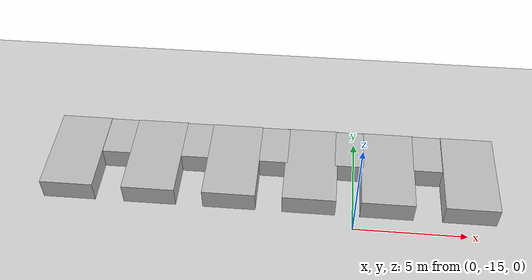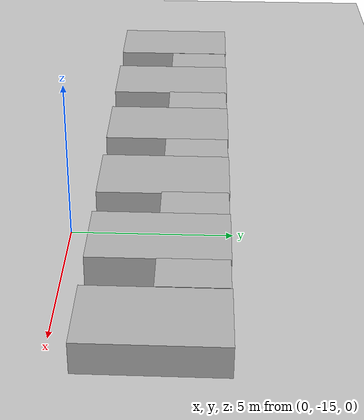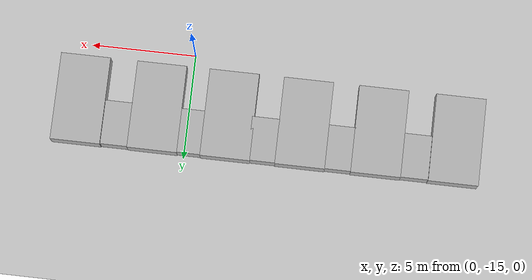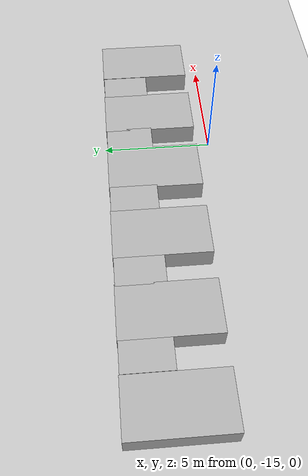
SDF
<sdf version="1.6">
 <world name="default">
  <plugin filename="gz-sim-physics-system" name="gz::sim::systems::Physics"/>
  <plugin filename="gz-sim-user-commands-system" name="gz::sim::systems::UserCommands"/>
  <plugin filename="gz-sim-scene-broadcaster-system" name="gz::sim::systems::SceneBroadcaster"/>
  <plugin filename="gz-sim-sensors-system" name="gz::sim::systems::Sensors">
   <render_engine>ogre2</render_engine>
  </plugin>
  <physics name="1ms" type="ignored">
   <max_step_size>0.005</max_step_size>
   <real_time_factor>1.0</real_time_factor>
  </physics>
  <light type="directional" name="sun">
   <pose>0 0 10 0 0 0</pose>
   <diffuse>0.8 0.8 0.8 1</diffuse>
   <specular>0.2 0.2 0.2 1</specular>
   <attenuation>
    <range>1000</range>
    <constant>0.9</constant>
    <linear>0.01</linear>
    <quadratic>0.001</quadratic>
   </attenuation>
   <direction>-0.5 0.1 -0.9</direction>
  </light>
  <model name="ground_plane">
   <static>true</static>
   <link name="link">
    <collision name="collision">
     <geometry><plane><normal>0 0 1</normal><size>100 100</size></plane></geometry>
    </collision>
    <visual name="visual">
     <geometry><plane><normal>0 0 1</normal><size>100 100</size></plane></geometry>
     <material>
      <ambient>0.8 0.8 0.8 1</ambient>
      <diffuse>0.8 0.8 0.8 1</diffuse>
      <specular>0.8 0.8 0.8 1</specular>
     </material>
    </visual>
   </link>
  </model>
  <model name="systembox_right_0">
   <pose>5.14 -12.2 0.49999933294646554 0 0 0</pose>
   <link name="box_link">
    <collision name="box_collision"><geometry><box><size>2.363 4.171 1</size></box></geometry></collision>
    <visual name="box_visual"><geometry><box><size>2.363 4.171 1</size></box></geometry></visual>
   </link>
   <static>true</static>
  </model>
  <model name="systembox_mid_0">
   <pose>3.29 -11.19 0.49999933294646554 0 0 0</pose>
   <link name="box_link">
    <collision name="box_collision"><geometry><box><size>1.3 2.1 1</size></box></geometry></collision>
    <visual name="box_visual"><geometry><box><size>1.3 2.1 1</size></box></geometry></visual>
   </link>
   <static>true</static>
  </model>
  <model name="systembox_left_0">
   <pose>1.49 -12.2 0.49999933294646554 0 0 0</pose>
   <link name="box_link">
    <collision name="box_collision"><geometry><box><size>2.363 4.171 1</size></box></geometry></collision>
    <visual name="box_visual"><geometry><box><size>2.363 4.171 1</size></box></geometry></visual>
   </link>
   <static>true</static>
  </model>
  <model name="systembox_junction_0">
   <pose>-0.25 -11.19 0.49999933294646554 0 0 0</pose>
   <link name="box_link">
    <collision name="box_collision"><geometry><box><size>1.3 2.1 1</size></box></geometry></collision>
    <visual name="box_visual"><geometry><box><size>1.3 2.1 1</size></box></geometry></visual>
   </link>
   <static>true</static>
  </model>
  <model name="systembox_right_1">
   <pose>-1.97 -12.2 0.49999933294646554 0 0 0</pose>
   <link name="box_link">
    <collision name="box_collision"><geometry><box><size>2.363 4.171 1</size></box></geometry></collision>
    <visual name="box_visual"><geometry><box><size>2.363 4.171 1</size></box></geometry></visual>
   </link>
   <static>true</static>
  </model>
  <model name="systembox_mid_1">
   <pose>-3.7 -11.19 0.49999933294646554 0 0 0</pose>
   <link name="box_link">
    <collision name="box_collision"><geometry><box><size>1.3 2.1 1</size></box></geometry></collision>
    <visual name="box_visual"><geometry><box><size>1.3 2.1 1</size></box></geometry></visual>
   </link>
   <static>true</static>
  </model>
  <model name="systembox_left_1">
   <pose>-5.52 -12.2 0.49999933294646554 0 0 0</pose>
   <link name="box_link">
    <collision name="box_collision"><geometry><box><size>2.363 4.171 1</size></box></geometry></collision>
    <visual name="box_visual"><geometry><box><size>2.363 4.171 1</size></box></geometry></visual>
   </link>
   <static>true</static>
  </model>
  <model name="systembox_junction_1">
   <pose>-7.35 -11.19 0.49999933294646554 0 0 0</pose>
   <link name="box_link">
    <collision name="box_collision"><geometry><box><size>1.3 2.1 1</size></box></geometry></collision>
    <visual name="box_visual"><geometry><box><size>1.3 2.1 1</size></box></geometry></visual>
   </link>
   <static>true</static>
  </model>
  <model name="systembox_right_2">
   <pose>-9.11 -12.2 0.49999933294646554 0 0 0</pose>
   <link name="box_link">
    <collision name="box_collision"><geometry><box><size>2.363 4.171 1</size></box></geometry></collision>
    <visual name="box_visual"><geometry><box><size>2.363 4.171 1</size></box></geometry></visual>
   </link>
   <static>true</static>
  </model>
  <model name="systembox_mid_2">
   <pose>-10.94 -11.19 0.49999933294646554 0 0 0</pose>
   <link name="box_link">
    <collision name="box_collision"><geometry><box><size>1.3 2.1 1</size></box></geometry></collision>
    <visual name="box_visual"><geometry><box><size>1.3 2.1 1</size></box></geometry></visual>
   </link>
   <static>true</static>
  </model>
  <model name="systembox_left_2">
   <pose>-12.78 -12.2 0.49999933294646554 0 0 0</pose>
   <link name="box_link">
    <collision name="box_collision"><geometry><box><size>2.363 4.171 1</size></box></geometry></collision>
    <visual name="box_visual"><geometry><box><size>2.363 4.171 1</size></box></geometry></visual>
   </link>
   <static>true</static>
  </model>
 </world>
</sdf>
